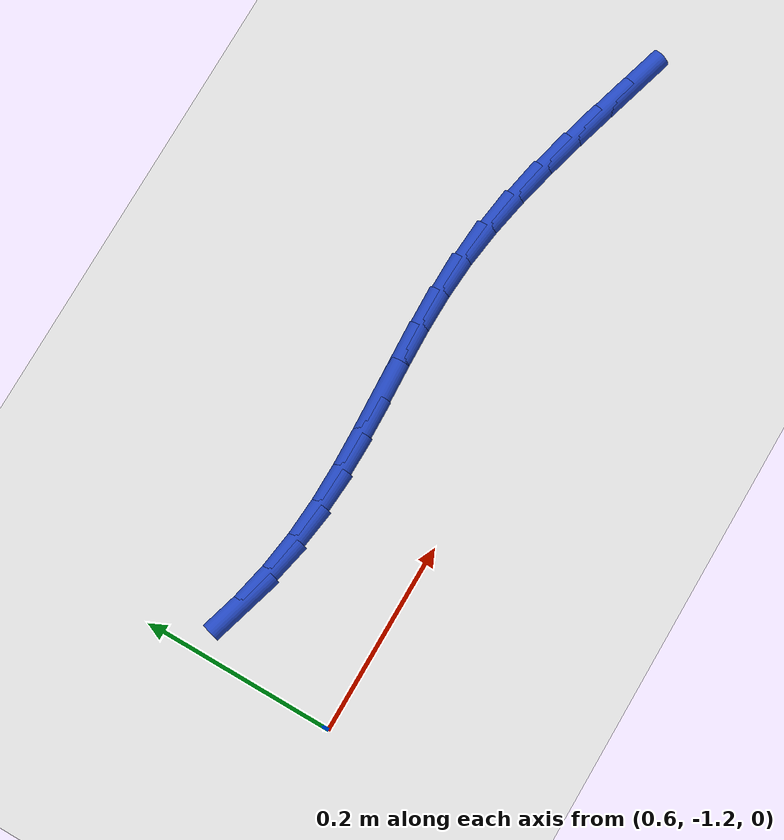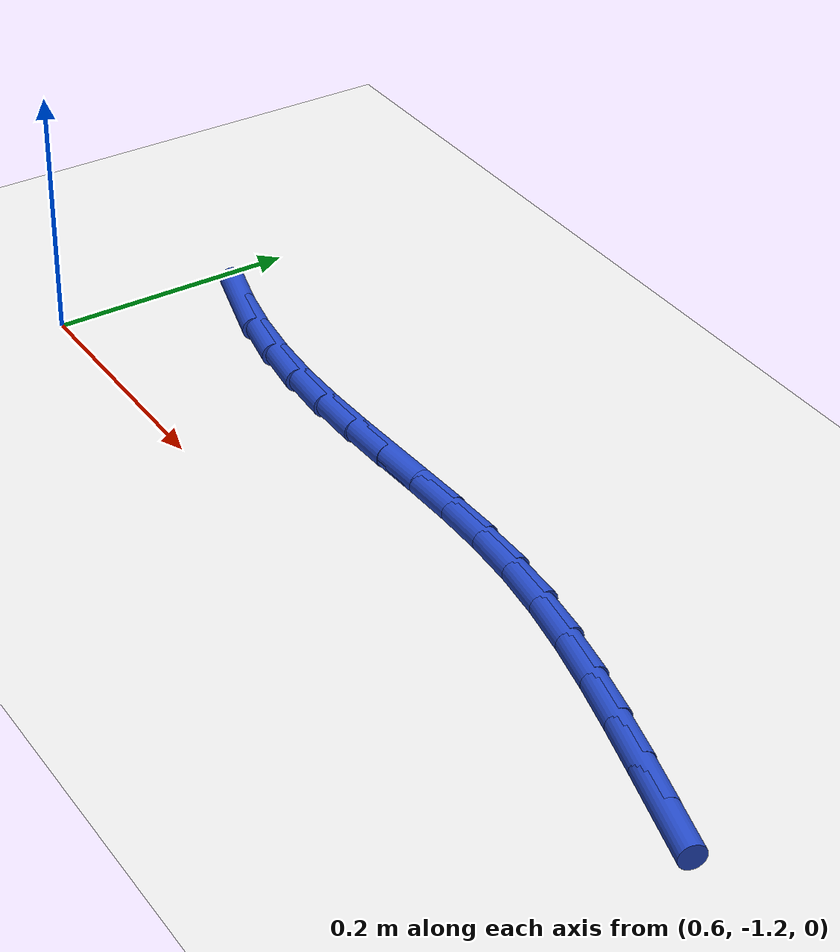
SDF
<sdf version="1.6">
 <world name="default">
  <model name="ground_plane">
   <static>1</static>
   <link name="link">
    <collision name="collision">
     <geometry><plane><normal>0 0 1</normal><size>100 100</size></plane></geometry>
     <surface><friction><ode><mu>100</mu><mu2>50</mu2></ode></friction></surface>
    </collision>
    <visual name="visual">
     <cast_shadows>0</cast_shadows>
     <geometry><plane><normal>0 0 1</normal><size>100 100</size></plane></geometry>
     <material>
      <script><uri>file://media/materials/scripts/gazebo.material</uri><name>Gazebo/WhiteGlow</name></script>
     </material>
    </visual>
   </link>
  </model>
  <model name="line">
   <link name="link_151">
    <pose>1.298732171142892 -1.1372345042024223 0.01 0 1.57 -0.28184343413377044</pose>
    <collision name="collision">
     <geometry><cylinder><radius>0.01</radius><length>0.08</length></cylinder></geometry>
    </collision>
    <visual name="visual">
     <material>
      <script><name>Gazebo/Blue</name><uri>file://media/materials/scripts/gazebo.material</uri></script>
     </material>
     <geometry><cylinder><radius>0.01</radius><length>0.08</length></cylinder></geometry>
    </visual>
   </link>
   <link name="link_152">
    <pose>1.2586977657666507 -1.1256424920977763 0.01 0 1.57 -0.2762502392180661</pose>
    <collision name="collision">
     <geometry><cylinder><radius>0.01</radius><length>0.08</length></cylinder></geometry>
    </collision>
    <visual name="visual">
     <material>
      <script><name>Gazebo/Blue</name><uri>file://media/materials/scripts/gazebo.material</uri></script>
     </material>
     <geometry><cylinder><radius>0.01</radius><length>0.08</length></cylinder></geometry>
    </visual>
   </link>
   <link name="link_153">
    <pose>1.2185948931889203 -1.1142733734196124 0.01 0 1.57 -0.2587617562135604</pose>
    <collision name="collision">
     <geometry><cylinder><radius>0.01</radius><length>0.08</length></cylinder></geometry>
    </collision>
    <visual name="visual">
     <material>
      <script><name>Gazebo/Blue</name><uri>file://media/materials/scripts/gazebo.material</uri></script>
     </material>
     <geometry><cylinder><radius>0.01</radius><length>0.08</length></cylinder></geometry>
    </visual>
   </link>
   <link name="link_154">
    <pose>1.178456541842724 -1.1036489080972782 0.01 0 1.57 -0.2290395062704252</pose>
    <collision name="collision">
     <geometry><cylinder><radius>0.01</radius><length>0.08</length></cylinder></geometry>
    </collision>
    <visual name="visual">
     <material>
      <script><name>Gazebo/Blue</name><uri>file://media/materials/scripts/gazebo.material</uri></script>
     </material>
     <geometry><cylinder><radius>0.01</radius><length>0.08</length></cylinder></geometry>
    </visual>
   </link>
   <link name="link_155">
    <pose>1.1383157001610842 -1.0942908560601217 0.01 0 1.57 -0.18653238866289928</pose>
    <collision name="collision">
     <geometry><cylinder><radius>0.01</radius><length>0.08</length></cylinder></geometry>
    </collision>
    <visual name="visual">
     <material>
      <script><name>Gazebo/Blue</name><uri>file://media/materials/scripts/gazebo.material</uri></script>
     </material>
     <geometry><cylinder><radius>0.01</radius><length>0.08</length></cylinder></geometry>
    </visual>
   </link>
   <link name="link_156">
    <pose>1.0982053565770231 -1.08672097723749 0.01 0 1.57 -0.13059720809931236</pose>
    <collision name="collision">
     <geometry><cylinder><radius>0.01</radius><length>0.08</length></cylinder></geometry>
    </collision>
    <visual name="visual">
     <material>
      <script><name>Gazebo/Blue</name><uri>file://media/materials/scripts/gazebo.material</uri></script>
     </material>
     <geometry><cylinder><radius>0.01</radius><length>0.08</length></cylinder></geometry>
    </visual>
   </link>
   <link name="link_157">
    <pose>1.0581584995235642 -1.0814610315587314 0.01 0 1.57 -0.06361619844569816</pose>
    <collision name="collision">
     <geometry><cylinder><radius>0.01</radius><length>0.08</length></cylinder></geometry>
    </collision>
    <visual name="visual">
     <material>
      <script><name>Gazebo/Blue</name><uri>file://media/materials/scripts/gazebo.material</uri></script>
     </material>
     <geometry><cylinder><radius>0.01</radius><length>0.08</length></cylinder></geometry>
    </visual>
   </link>
   <link name="link_158">
    <pose>1.018203046511952 -1.0789157830464118 0.01 0 1.57 -0.006224831553289785</pose>
    <collision name="collision">
     <geometry><cylinder><radius>0.01</radius><length>0.08</length></cylinder></geometry>
    </collision>
    <visual name="visual">
     <material>
      <script><name>Gazebo/Blue</name><uri>file://media/materials/scripts/gazebo.material</uri></script>
     </material>
     <geometry><cylinder><radius>0.01</radius><length>0.08</length></cylinder></geometry>
    </visual>
   </link>
   <link name="link_159">
    <pose>0.9783312695180254 -1.078667584745113 0.01 0 1.57 0.03210334375141747</pose>
    <collision name="collision">
     <geometry><cylinder><radius>0.01</radius><length>0.08</length></cylinder></geometry>
    </collision>
    <visual name="visual">
     <material>
      <script><name>Gazebo/Blue</name><uri>file://media/materials/scripts/gazebo.material</uri></script>
     </material>
     <geometry><cylinder><radius>0.01</radius><length>0.08</length></cylinder></geometry>
    </visual>
   </link>
   <link name="link_160">
    <pose>0.9385201537208664 -1.0799460939318983 0.01 0 1.57 0.05108309856441953</pose>
    <collision name="collision">
     <geometry><cylinder><radius>0.01</radius><length>0.08</length></cylinder></geometry>
    </collision>
    <visual name="visual">
     <material>
      <script><name>Gazebo/Blue</name><uri>file://media/materials/scripts/gazebo.material</uri></script>
     </material>
     <geometry><cylinder><radius>0.01</radius><length>0.08</length></cylinder></geometry>
    </visual>
   </link>
   <link name="link_161">
    <pose>0.8987466257963516 -1.081979618102467 0.01 0 1.57 0.05068333502932595</pose>
    <collision name="collision">
     <geometry><cylinder><radius>0.01</radius><length>0.08</length></cylinder></geometry>
    </collision>
    <visual name="visual">
     <material>
      <script><name>Gazebo/Blue</name><uri>file://media/materials/scripts/gazebo.material</uri></script>
     </material>
     <geometry><cylinder><radius>0.01</radius><length>0.08</length></cylinder></geometry>
    </visual>
   </link>
   <link name="link_162">
    <pose>0.8589876124203568 -1.0839964647525184 0.01 0 1.57 0.030881595539252592</pose>
    <collision name="collision">
     <geometry><cylinder><radius>0.01</radius><length>0.08</length></cylinder></geometry>
    </collision>
    <visual name="visual">
     <material>
      <script><name>Gazebo/Blue</name><uri>file://media/materials/scripts/gazebo.material</uri></script>
     </material>
     <geometry><cylinder><radius>0.01</radius><length>0.08</length></cylinder></geometry>
    </visual>
   </link>
   <link name="link_163">
    <pose>0.8192200402687584 -1.0852249413777526 0.01 0 1.57 -0.00833127793058777</pose>
    <collision name="collision">
     <geometry><cylinder><radius>0.01</radius><length>0.08</length></cylinder></geometry>
    </collision>
    <visual name="visual">
     <material>
      <script><name>Gazebo/Blue</name><uri>file://media/materials/scripts/gazebo.material</uri></script>
     </material>
     <geometry><cylinder><radius>0.01</radius><length>0.08</length></cylinder></geometry>
    </visual>
   </link>
   <link name="link_164">
    <pose>0.779420836017433 -1.0848933554738693 0.01 0 1.57 -0.06672066399794326</pose>
    <collision name="collision">
     <geometry><cylinder><radius>0.01</radius><length>0.08</length></cylinder></geometry>
    </collision>
    <visual name="visual">
     <material>
      <script><name>Gazebo/Blue</name><uri>file://media/materials/scripts/gazebo.material</uri></script>
     </material>
     <geometry><cylinder><radius>0.01</radius><length>0.08</length></cylinder></geometry>
    </visual>
   </link>
   <link name="link_165">
    <pose>0.7395670650120998 -1.0822303326237641 0.01 0 1.57 -0.13875324431960553</pose>
    <collision name="collision">
     <geometry><cylinder><radius>0.01</radius><length>0.08</length></cylinder></geometry>
    </collision>
    <visual name="visual">
     <material>
      <script><name>Gazebo/Blue</name><uri>file://media/materials/scripts/gazebo.material</uri></script>
     </material>
     <geometry><cylinder><radius>0.01</radius><length>0.08</length></cylinder></geometry>
    </visual>
   </link>
   <link name="link_166">
    <pose>0.6997237177689868 -1.076666185166773 0.01 0 1.57 -0.2115141362885994</pose>
    <collision name="collision">
     <geometry><cylinder><radius>0.01</radius><length>0.08</length></cylinder></geometry>
    </collision>
    <visual name="visual">
     <material>
      <script><name>Gazebo/Blue</name><uri>file://media/materials/scripts/gazebo.material</uri></script>
     </material>
     <geometry><cylinder><radius>0.01</radius><length>0.08</length></cylinder></geometry>
    </visual>
   </link>
   <link name="link_167">
    <pose>0.6601942296404906 -1.0681781810559536 0.01 0 1.57 -0.2839139295293403</pose>
    <collision name="collision">
     <geometry><cylinder><radius>0.01</radius><length>0.08</length></cylinder></geometry>
    </collision>
    <visual name="visual">
     <material>
      <script><name>Gazebo/Blue</name><uri>file://media/materials/scripts/gazebo.material</uri></script>
     </material>
     <geometry><cylinder><radius>0.01</radius><length>0.08</length></cylinder></geometry>
    </visual>
   </link>
  </model>
 </world>
</sdf>
